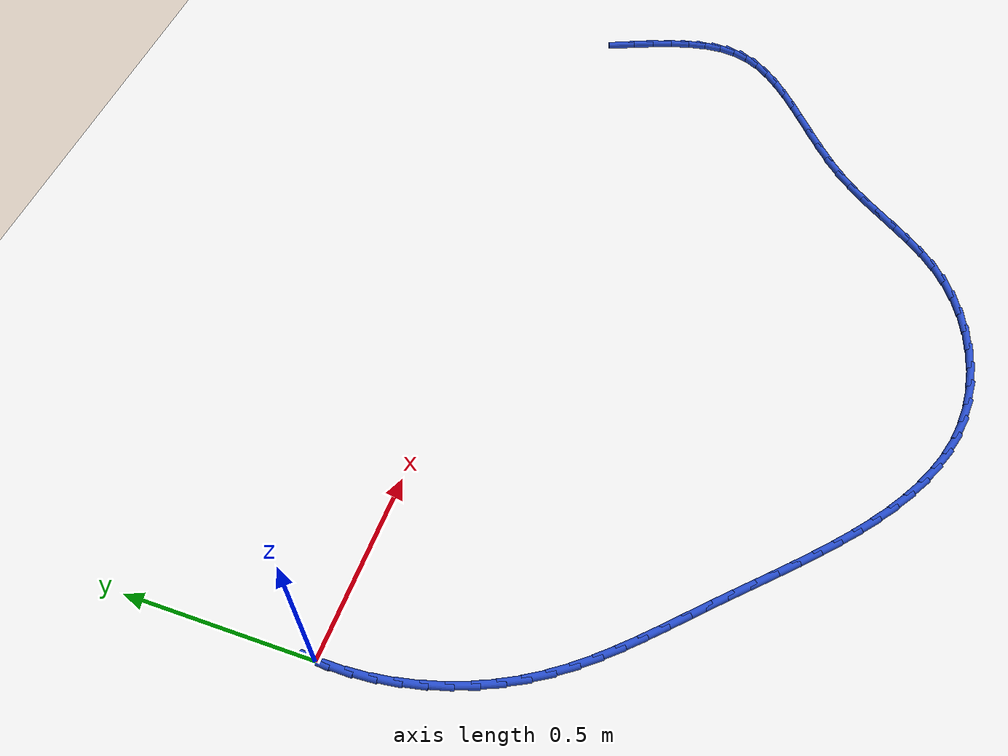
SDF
<sdf version="1.6">
 <world name="default">
  <model name="ground_plane">
   <static>1</static>
   <link name="link">
    <collision name="collision">
     <geometry><plane><normal>0 0 1</normal><size>100 100</size></plane></geometry>
     <surface><friction><ode><mu>100</mu><mu2>50</mu2></ode></friction></surface>
    </collision>
    <visual name="visual">
     <cast_shadows>0</cast_shadows>
     <geometry><plane><normal>0 0 1</normal><size>100 100</size></plane></geometry>
     <material>
      <script><uri>file://media/materials/scripts/gazebo.material</uri><name>Gazebo/WhiteGlow</name></script>
     </material>
    </visual>
   </link>
  </model>
  <model name="line">
   <link name="link_65">
    <pose>2.1895649396070658 -0.03903523564476519 0.01 0 1.57 -1.1783999816866964</pose>
    <collision name="collision">
     <geometry><cylinder><radius>0.01</radius><length>0.08</length></cylinder></geometry>
    </collision>
    <visual name="visual">
     <material>
      <script><name>Gazebo/Blue</name><uri>file://media/materials/scripts/gazebo.material</uri></script>
     </material>
     <geometry><cylinder><radius>0.01</radius><length>0.08</length></cylinder></geometry>
    </visual>
   </link>
   <link name="link_66">
    <pose>2.213152829165421 -0.09603023542315518 0.01 0 1.57 -1.1997097936757395</pose>
    <collision name="collision">
     <geometry><cylinder><radius>0.01</radius><length>0.08</length></cylinder></geometry>
    </collision>
    <visual name="visual">
     <material>
      <script><name>Gazebo/Blue</name><uri>file://media/materials/scripts/gazebo.material</uri></script>
     </material>
     <geometry><cylinder><radius>0.01</radius><length>0.08</length></cylinder></geometry>
    </visual>
   </link>
   <link name="link_67">
    <pose>2.2346405037199544 -0.15125233572940475 0.01 0 1.57 -1.2411557181424564</pose>
    <collision name="collision">
     <geometry><cylinder><radius>0.01</radius><length>0.08</length></cylinder></geometry>
    </collision>
    <visual name="visual">
     <material>
      <script><name>Gazebo/Blue</name><uri>file://media/materials/scripts/gazebo.material</uri></script>
     </material>
     <geometry><cylinder><radius>0.01</radius><length>0.08</length></cylinder></geometry>
    </visual>
   </link>
   <link name="link_68">
    <pose>2.252913759935136 -0.20466364380905144 0.01 0 1.57 -1.3066737340160457</pose>
    <collision name="collision">
     <geometry><cylinder><radius>0.01</radius><length>0.08</length></cylinder></geometry>
    </collision>
    <visual name="visual">
     <material>
      <script><name>Gazebo/Blue</name><uri>file://media/materials/scripts/gazebo.material</uri></script>
     </material>
     <geometry><cylinder><radius>0.01</radius><length>0.08</length></cylinder></geometry>
    </visual>
   </link>
   <link name="link_69">
    <pose>2.266858394475439 -0.2562262669076353 0.01 0 1.57 -1.4012934879325303</pose>
    <collision name="collision">
     <geometry><cylinder><radius>0.01</radius><length>0.08</length></cylinder></geometry>
    </collision>
    <visual name="visual">
     <material>
      <script><name>Gazebo/Blue</name><uri>file://media/materials/scripts/gazebo.material</uri></script>
     </material>
     <geometry><cylinder><radius>0.01</radius><length>0.08</length></cylinder></geometry>
    </visual>
   </link>
   <link name="link_70">
    <pose>2.275360204005336 -0.3059023122706961 0.01 0 1.57 -1.5300917637974591</pose>
    <collision name="collision">
     <geometry><cylinder><radius>0.01</radius><length>0.08</length></cylinder></geometry>
    </collision>
    <visual name="visual">
     <material>
      <script><name>Gazebo/Blue</name><uri>file://media/materials/scripts/gazebo.material</uri></script>
     </material>
     <geometry><cylinder><radius>0.01</radius><length>0.08</length></cylinder></geometry>
    </visual>
   </link>
   <link name="link_71">
    <pose>2.277304985189299 -0.3536538871437717 0.01 0 1.57 1.4463811442503114</pose>
    <collision name="collision">
     <geometry><cylinder><radius>0.01</radius><length>0.08</length></cylinder></geometry>
    </collision>
    <visual name="visual">
     <material>
      <script><name>Gazebo/Blue</name><uri>file://media/materials/scripts/gazebo.material</uri></script>
     </material>
     <geometry><cylinder><radius>0.01</radius><length>0.08</length></cylinder></geometry>
    </visual>
   </link>
   <link name="link_72">
    <pose>2.2715785346917983 -0.3994430987724018 0.01 0 1.57 1.2510643974522038</pose>
    <collision name="collision">
     <geometry><cylinder><radius>0.01</radius><length>0.08</length></cylinder></geometry>
    </collision>
    <visual name="visual">
     <material>
      <script><name>Gazebo/Blue</name><uri>file://media/materials/scripts/gazebo.material</uri></script>
     </material>
     <geometry><cylinder><radius>0.01</radius><length>0.08</length></cylinder></geometry>
    </visual>
   </link>
   <link name="link_73">
    <pose>2.257079593408134 -0.44323438551518096 0.01 0 1.57 1.0603291132609824</pose>
    <collision name="collision">
     <geometry><cylinder><radius>0.01</radius><length>0.08</length></cylinder></geometry>
    </collision>
    <visual name="visual">
     <material>
      <script><name>Gazebo/Blue</name><uri>file://media/materials/scripts/gazebo.material</uri></script>
     </material>
     <geometry><cylinder><radius>0.01</radius><length>0.08</length></cylinder></geometry>
    </visual>
   </link>
   <link name="link_74">
    <pose>2.233605739997131 -0.48515405648788623 0.01 0 1.57 0.9139209159196641</pose>
    <collision name="collision">
     <geometry><cylinder><radius>0.01</radius><length>0.08</length></cylinder></geometry>
    </collision>
    <visual name="visual">
     <material>
      <script><name>Gazebo/Blue</name><uri>file://media/materials/scripts/gazebo.material</uri></script>
     </material>
     <geometry><cylinder><radius>0.01</radius><length>0.08</length></cylinder></geometry>
    </visual>
   </link>
   <link name="link_75">
    <pose>2.2024229566133964 -0.5255928640633073 0.01 0 1.57 0.8098900711084929</pose>
    <collision name="collision">
     <geometry><cylinder><radius>0.01</radius><length>0.08</length></cylinder></geometry>
    </collision>
    <visual name="visual">
     <material>
      <script><name>Gazebo/Blue</name><uri>file://media/materials/scripts/gazebo.material</uri></script>
     </material>
     <geometry><cylinder><radius>0.01</radius><length>0.08</length></cylinder></geometry>
    </visual>
   </link>
   <link name="link_76">
    <pose>2.1649327576412984 -0.5649659684724063 0.01 0 1.57 0.7401430956129548</pose>
    <collision name="collision">
     <geometry><cylinder><radius>0.01</radius><length>0.08</length></cylinder></geometry>
    </collision>
    <visual name="visual">
     <material>
      <script><name>Gazebo/Blue</name><uri>file://media/materials/scripts/gazebo.material</uri></script>
     </material>
     <geometry><cylinder><radius>0.01</radius><length>0.08</length></cylinder></geometry>
    </visual>
   </link>
   <link name="link_77">
    <pose>2.1225366574652025 -0.6036885299461473 0.01 0 1.57 0.6977748632067975</pose>
    <collision name="collision">
     <geometry><cylinder><radius>0.01</radius><length>0.08</length></cylinder></geometry>
    </collision>
    <visual name="visual">
     <material>
      <script><name>Gazebo/Blue</name><uri>file://media/materials/scripts/gazebo.material</uri></script>
     </material>
     <geometry><cylinder><radius>0.01</radius><length>0.08</length></cylinder></geometry>
    </visual>
   </link>
   <link name="link_78">
    <pose>2.076636170469475 -0.642175708715494 0.01 0 1.57 0.6780887767837892</pose>
    <collision name="collision">
     <geometry><cylinder><radius>0.01</radius><length>0.08</length></cylinder></geometry>
    </collision>
    <visual name="visual">
     <material>
      <script><name>Gazebo/Blue</name><uri>file://media/materials/scripts/gazebo.material</uri></script>
     </material>
     <geometry><cylinder><radius>0.01</radius><length>0.08</length></cylinder></geometry>
    </visual>
   </link>
   <link name="link_79">
    <pose>2.0286328110384826 -0.6808426650114083 0.01 0 1.57 0.6784621123797258</pose>
    <collision name="collision">
     <geometry><cylinder><radius>0.01</radius><length>0.08</length></cylinder></geometry>
    </collision>
    <visual name="visual">
     <material>
      <script><name>Gazebo/Blue</name><uri>file://media/materials/scripts/gazebo.material</uri></script>
     </material>
     <geometry><cylinder><radius>0.01</radius><length>0.08</length></cylinder></geometry>
    </visual>
   </link>
   <link name="link_80">
    <pose>1.9799280935565928 -0.7201045590648546 0.01 0 1.57 0.6980263480804113</pose>
    <collision name="collision">
     <geometry><cylinder><radius>0.01</radius><length>0.08</length></cylinder></geometry>
    </collision>
    <visual name="visual">
     <material>
      <script><name>Gazebo/Blue</name><uri>file://media/materials/scripts/gazebo.material</uri></script>
     </material>
     <geometry><cylinder><radius>0.01</radius><length>0.08</length></cylinder></geometry>
    </visual>
   </link>
   <link name="link_81">
    <pose>1.9319235324081707 -0.7603765511067958 0.01 0 1.57 0.7374254845285777</pose>
    <collision name="collision">
     <geometry><cylinder><radius>0.01</radius><length>0.08</length></cylinder></geometry>
    </collision>
    <visual name="visual">
     <material>
      <script><name>Gazebo/Blue</name><uri>file://media/materials/scripts/gazebo.material</uri></script>
     </material>
     <geometry><cylinder><radius>0.01</radius><length>0.08</length></cylinder></geometry>
    </visual>
   </link>
   <link name="link_82">
    <pose>1.8860206419775842 -0.8020738013681951 0.01 0 1.57 0.7984361288930448</pose>
    <collision name="collision">
     <geometry><cylinder><radius>0.01</radius><length>0.08</length></cylinder></geometry>
    </collision>
    <visual name="visual">
     <material>
      <script><name>Gazebo/Blue</name><uri>file://media/materials/scripts/gazebo.material</uri></script>
     </material>
     <geometry><cylinder><radius>0.01</radius><length>0.08</length></cylinder></geometry>
    </visual>
   </link>
   <link name="link_83">
    <pose>1.843609152811268 -0.8456058833463613 0.01 0 1.57 0.8674309957947692</pose>
    <collision name="collision">
     <geometry><cylinder><radius>0.01</radius><length>0.08</length></cylinder></geometry>
    </collision>
    <visual name="visual">
     <material>
      <script><name>Gazebo/Blue</name><uri>file://media/materials/scripts/gazebo.material</uri></script>
     </material>
     <geometry><cylinder><radius>0.01</radius><length>0.08</length></cylinder></geometry>
    </visual>
   </link>
   <link name="link_84">
    <pose>1.805158195370443 -0.8909459127809746 0.01 0 1.57 0.9163106787712916</pose>
    <collision name="collision">
     <geometry><cylinder><radius>0.01</radius><length>0.08</length></cylinder></geometry>
    </collision>
    <visual name="visual">
     <material>
      <script><name>Gazebo/Blue</name><uri>file://media/materials/scripts/gazebo.material</uri></script>
     </material>
     <geometry><cylinder><radius>0.01</radius><length>0.08</length></cylinder></geometry>
    </visual>
   </link>
   <link name="link_85">
    <pose>1.769571376937207 -0.9373247887345254 0.01 0 1.57 0.9406310151177881</pose>
    <collision name="collision">
     <geometry><cylinder><radius>0.01</radius><length>0.08</length></cylinder></geometry>
    </collision>
    <visual name="visual">
     <material>
      <script><name>Gazebo/Blue</name><uri>file://media/materials/scripts/gazebo.material</uri></script>
     </material>
     <geometry><cylinder><radius>0.01</radius><length>0.08</length></cylinder></geometry>
    </visual>
   </link>
   <link name="link_86">
    <pose>1.73560002489034 -0.9839012141593796 0.01 0 1.57 0.9391725968879134</pose>
    <collision name="collision">
     <geometry><cylinder><radius>0.01</radius><length>0.08</length></cylinder></geometry>
    </collision>
    <visual name="visual">
     <material>
      <script><name>Gazebo/Blue</name><uri>file://media/materials/scripts/gazebo.material</uri></script>
     </material>
     <geometry><cylinder><radius>0.01</radius><length>0.08</length></cylinder></geometry>
    </visual>
   </link>
   <link name="link_87">
    <pose>1.7019954666086259 -1.0298338920079013 0.01 0 1.57 0.910930984916861</pose>
    <collision name="collision">
     <geometry><cylinder><radius>0.01</radius><length>0.08</length></cylinder></geometry>
    </collision>
    <visual name="visual">
     <material>
      <script><name>Gazebo/Blue</name><uri>file://media/materials/scripts/gazebo.material</uri></script>
     </material>
     <geometry><cylinder><radius>0.01</radius><length>0.08</length></cylinder></geometry>
    </visual>
   </link>
   <link name="link_88">
    <pose>1.6675090294708448 -1.0742815252324576 0.01 0 1.57 0.8551909352550403</pose>
    <collision name="collision">
     <geometry><cylinder><radius>0.01</radius><length>0.08</length></cylinder></geometry>
    </collision>
    <visual name="visual">
     <material>
      <script><name>Gazebo/Blue</name><uri>file://media/materials/scripts/gazebo.material</uri></script>
     </material>
     <geometry><cylinder><radius>0.01</radius><length>0.08</length></cylinder></geometry>
    </visual>
   </link>
   <link name="link_89">
    <pose>1.630892040855779 -1.1164028167854125 0.01 0 1.57 0.772193590114462</pose>
    <collision name="collision">
     <geometry><cylinder><radius>0.01</radius><length>0.08</length></cylinder></geometry>
    </collision>
    <visual name="visual">
     <material>
      <script><name>Gazebo/Blue</name><uri>file://media/materials/scripts/gazebo.material</uri></script>
     </material>
     <geometry><cylinder><radius>0.01</radius><length>0.08</length></cylinder></geometry>
    </visual>
   </link>
   <link name="link_90">
    <pose>1.5908958281422105 -1.1553564696191327 0.01 0 1.57 0.6659135869912923</pose>
    <collision name="collision">
     <geometry><cylinder><radius>0.01</radius><length>0.08</length></cylinder></geometry>
    </collision>
    <visual name="visual">
     <material>
      <script><name>Gazebo/Blue</name><uri>file://media/materials/scripts/gazebo.material</uri></script>
     </material>
     <geometry><cylinder><radius>0.01</radius><length>0.08</length></cylinder></geometry>
    </visual>
   </link>
   <link name="link_91">
    <pose>1.5463752218054947 -1.1903329390807547 0.01 0 1.57 0.5577831855368323</pose>
    <collision name="collision">
     <geometry><cylinder><radius>0.01</radius><length>0.08</length></cylinder></geometry>
    </collision>
    <visual name="visual">
     <material>
      <script><name>Gazebo/Blue</name><uri>file://media/materials/scripts/gazebo.material</uri></script>
     </material>
     <geometry><cylinder><radius>0.01</radius><length>0.08</length></cylinder></geometry>
    </visual>
   </link>
   <link name="link_92">
    <pose>1.4973908651773653 -1.2208925964629453 0.01 0 1.57 0.45812924908951147</pose>
    <collision name="collision">
     <geometry><cylinder><radius>0.01</radius><length>0.08</length></cylinder></geometry>
    </collision>
    <visual name="visual">
     <material>
      <script><name>Gazebo/Blue</name><uri>file://media/materials/scripts/gazebo.material</uri></script>
     </material>
     <geometry><cylinder><radius>0.01</radius><length>0.08</length></cylinder></geometry>
    </visual>
   </link>
   <link name="link_93">
    <pose>1.4447825766633102 -1.246834846240531 0.01 0 1.57 0.36447319033714765</pose>
    <collision name="collision">
     <geometry><cylinder><radius>0.01</radius><length>0.08</length></cylinder></geometry>
    </collision>
    <visual name="visual">
     <material>
      <script><name>Gazebo/Blue</name><uri>file://media/materials/scripts/gazebo.material</uri></script>
     </material>
     <geometry><cylinder><radius>0.01</radius><length>0.08</length></cylinder></geometry>
    </visual>
   </link>
   <link name="link_94">
    <pose>1.3894032163513457 -1.2679630937797672 0.01 0 1.57 0.2742112568292758</pose>
    <collision name="collision">
     <geometry><cylinder><radius>0.01</radius><length>0.08</length></cylinder></geometry>
    </collision>
    <visual name="visual">
     <material>
      <script><name>Gazebo/Blue</name><uri>file://media/materials/scripts/gazebo.material</uri></script>
     </material>
     <geometry><cylinder><radius>0.01</radius><length>0.08</length></cylinder></geometry>
    </visual>
   </link>
   <link name="link_95">
    <pose>1.3321056443294903 -1.284080744446909 0.01 0 1.57 0.1848084738284853</pose>
    <collision name="collision">
     <geometry><cylinder><radius>0.01</radius><length>0.08</length></cylinder></geometry>
    </collision>
    <visual name="visual">
     <material>
      <script><name>Gazebo/Blue</name><uri>file://media/materials/scripts/gazebo.material</uri></script>
     </material>
     <geometry><cylinder><radius>0.01</radius><length>0.08</length></cylinder></geometry>
    </visual>
   </link>
   <link name="link_96">
    <pose>1.2737427206857617 -1.2949912036082125 0.01 0 1.57 0.0937344799099432</pose>
    <collision name="collision">
     <geometry><cylinder><radius>0.01</radius><length>0.08</length></cylinder></geometry>
    </collision>
    <visual name="visual">
     <material>
      <script><name>Gazebo/Blue</name><uri>file://media/materials/scripts/gazebo.material</uri></script>
     </material>
     <geometry><cylinder><radius>0.01</radius><length>0.08</length></cylinder></geometry>
    </visual>
   </link>
   <link name="link_97">
    <pose>1.2151673055081775 -1.3004978766299333 0.01 0 1.57 -0.001617460852261417</pose>
    <collision name="collision">
     <geometry><cylinder><radius>0.01</radius><length>0.08</length></cylinder></geometry>
    </collision>
    <visual name="visual">
     <material>
      <script><name>Gazebo/Blue</name><uri>file://media/materials/scripts/gazebo.material</uri></script>
     </material>
     <geometry><cylinder><radius>0.01</radius><length>0.08</length></cylinder></geometry>
    </visual>
   </link>
   <link name="link_98">
    <pose>1.1572322588847554 -1.3004041688783272 0.01 0 1.57 -0.10361346539883963</pose>
    <collision name="collision">
     <geometry><cylinder><radius>0.01</radius><length>0.08</length></cylinder></geometry>
    </collision>
    <visual name="visual">
     <material>
      <script><name>Gazebo/Blue</name><uri>file://media/materials/scripts/gazebo.material</uri></script>
     </material>
     <geometry><cylinder><radius>0.01</radius><length>0.08</length></cylinder></geometry>
    </visual>
   </link>
   <link name="link_99">
    <pose>1.1007628762047275 -1.2945321518922739 0.01 0 1.57 -0.2071143768916317</pose>
    <collision name="collision">
     <geometry><cylinder><radius>0.01</radius><length>0.08</length></cylinder></geometry>
    </collision>
    <visual name="visual">
     <material>
      <script><name>Gazebo/Blue</name><uri>file://media/materials/scripts/gazebo.material</uri></script>
     </material>
     <geometry><cylinder><radius>0.01</radius><length>0.08</length></cylinder></geometry>
    </visual>
   </link>
   <link name="link_100">
    <pose>1.0460842028227373 -1.2830426548939537 0.01 0 1.57 -0.3044162251517337</pose>
    <collision name="collision">
     <geometry><cylinder><radius>0.01</radius><length>0.08</length></cylinder></geometry>
    </collision>
    <visual name="visual">
     <material>
      <script><name>Gazebo/Blue</name><uri>file://media/materials/scripts/gazebo.material</uri></script>
     </material>
     <geometry><cylinder><radius>0.01</radius><length>0.08</length></cylinder></geometry>
    </visual>
   </link>
   <link name="link_101">
    <pose>0.9930856796626555 -1.2663914882901524 0.01 0 1.57 -0.39333897195352846</pose>
    <collision name="collision">
     <geometry><cylinder><radius>0.01</radius><length>0.08</length></cylinder></geometry>
    </collision>
    <visual name="visual">
     <material>
      <script><name>Gazebo/Blue</name><uri>file://media/materials/scripts/gazebo.material</uri></script>
     </material>
     <geometry><cylinder><radius>0.01</radius><length>0.08</length></cylinder></geometry>
    </visual>
   </link>
   <link name="link_102">
    <pose>0.9416421897235524 -1.2450443207755864 0.01 0 1.57 -0.47273480719895866</pose>
    <collision name="collision">
     <geometry><cylinder><radius>0.01</radius><length>0.08</length></cylinder></geometry>
    </collision>
    <visual name="visual">
     <material>
      <script><name>Gazebo/Blue</name><uri>file://media/materials/scripts/gazebo.material</uri></script>
     </material>
     <geometry><cylinder><radius>0.01</radius><length>0.08</length></cylinder></geometry>
    </visual>
   </link>
   <link name="link_103">
    <pose>0.8916286160045017 -1.2194668210449742 0.01 0 1.57 -0.5421823000290429</pose>
    <collision name="collision">
     <geometry><cylinder><radius>0.01</radius><length>0.08</length></cylinder></geometry>
    </collision>
    <visual name="visual">
     <material>
      <script><name>Gazebo/Blue</name><uri>file://media/materials/scripts/gazebo.material</uri></script>
     </material>
     <geometry><cylinder><radius>0.01</radius><length>0.08</length></cylinder></geometry>
    </visual>
   </link>
   <link name="link_104">
    <pose>0.8429198415045734 -1.190124657793032 0.01 0 1.57 -0.6017858037862857</pose>
    <collision name="collision">
     <geometry><cylinder><radius>0.01</radius><length>0.08</length></cylinder></geometry>
    </collision>
    <visual name="visual">
     <material>
      <script><name>Gazebo/Blue</name><uri>file://media/materials/scripts/gazebo.material</uri></script>
     </material>
     <geometry><cylinder><radius>0.01</radius><length>0.08</length></cylinder></geometry>
    </visual>
   </link>
   <link name="link_105">
    <pose>0.7953907492228399 -1.157483499714478 0.01 0 1.57 -0.6519654059508453</pose>
    <collision name="collision">
     <geometry><cylinder><radius>0.01</radius><length>0.08</length></cylinder></geometry>
    </collision>
    <visual name="visual">
     <material>
      <script><name>Gazebo/Blue</name><uri>file://media/materials/scripts/gazebo.material</uri></script>
     </material>
     <geometry><cylinder><radius>0.01</radius><length>0.08</length></cylinder></geometry>
    </visual>
   </link>
   <link name="link_106">
    <pose>0.7489162221583721 -1.1220090155040292 0.01 0 1.57 -0.6932840680949194</pose>
    <collision name="collision">
     <geometry><cylinder><radius>0.01</radius><length>0.08</length></cylinder></geometry>
    </collision>
    <visual name="visual">
     <material>
      <script><name>Gazebo/Blue</name><uri>file://media/materials/scripts/gazebo.material</uri></script>
     </material>
     <geometry><cylinder><radius>0.01</radius><length>0.08</length></cylinder></geometry>
    </visual>
   </link>
   <link name="link_107">
    <pose>0.7033711433102411 -1.0841668738564016 0.01 0 1.57 -0.7263248257421603</pose>
    <collision name="collision">
     <geometry><cylinder><radius>0.01</radius><length>0.08</length></cylinder></geometry>
    </collision>
    <visual name="visual">
     <material>
      <script><name>Gazebo/Blue</name><uri>file://media/materials/scripts/gazebo.material</uri></script>
     </material>
     <geometry><cylinder><radius>0.01</radius><length>0.08</length></cylinder></geometry>
    </visual>
   </link>
   <link name="link_108">
    <pose>0.6586303956775197 -1.0444227434663145 0.01 0 1.57 -0.7516121518591032</pose>
    <collision name="collision">
     <geometry><cylinder><radius>0.01</radius><length>0.08</length></cylinder></geometry>
    </collision>
    <visual name="visual">
     <material>
      <script><name>Gazebo/Blue</name><uri>file://media/materials/scripts/gazebo.material</uri></script>
     </material>
     <geometry><cylinder><radius>0.01</radius><length>0.08</length></cylinder></geometry>
    </visual>
   </link>
   <link name="link_109">
    <pose>0.6145688622592786 -1.003242293028484 0.01 0 1.57 -0.7695652866244235</pose>
    <collision name="collision">
     <geometry><cylinder><radius>0.01</radius><length>0.08</length></cylinder></geometry>
    </collision>
    <visual name="visual">
     <material>
      <script><name>Gazebo/Blue</name><uri>file://media/materials/scripts/gazebo.material</uri></script>
     </material>
     <geometry><cylinder><radius>0.01</radius><length>0.08</length></cylinder></geometry>
    </visual>
   </link>
   <link name="link_110">
    <pose>0.5710614260545892 -0.9610911912376272 0.01 0 1.57 -0.7804716994107191</pose>
    <collision name="collision">
     <geometry><cylinder><radius>0.01</radius><length>0.08</length></cylinder></geometry>
    </collision>
    <visual name="visual">
     <material>
      <script><name>Gazebo/Blue</name><uri>file://media/materials/scripts/gazebo.material</uri></script>
     </material>
     <geometry><cylinder><radius>0.01</radius><length>0.08</length></cylinder></geometry>
    </visual>
   </link>
   <link name="link_111">
    <pose>0.5279829700625237 -0.9184351067884622 0.01 0 1.57 -0.784471588539481</pose>
    <collision name="collision">
     <geometry><cylinder><radius>0.01</radius><length>0.08</length></cylinder></geometry>
    </collision>
    <visual name="visual">
     <material>
      <script><name>Gazebo/Blue</name><uri>file://media/materials/scripts/gazebo.material</uri></script>
     </material>
     <geometry><cylinder><radius>0.01</radius><length>0.08</length></cylinder></geometry>
    </visual>
   </link>
   <link name="link_112">
    <pose>0.48520837728215366 -0.8757397083757062 0.01 0 1.57 -0.7815473215284534</pose>
    <collision name="collision">
     <geometry><cylinder><radius>0.01</radius><length>0.08</length></cylinder></geometry>
    </collision>
    <visual name="visual">
     <material>
      <script><name>Gazebo/Blue</name><uri>file://media/materials/scripts/gazebo.material</uri></script>
     </material>
     <geometry><cylinder><radius>0.01</radius><length>0.08</length></cylinder></geometry>
    </visual>
   </link>
   <link name="link_113">
    <pose>0.4426125307125499 -0.833470664694076 0.01 0 1.57 -0.7727175145802414</pose>
    <collision name="collision">
     <geometry><cylinder><radius>0.01</radius><length>0.08</length></cylinder></geometry>
    </collision>
    <visual name="visual">
     <material>
      <script><name>Gazebo/Blue</name><uri>file://media/materials/scripts/gazebo.material</uri></script>
     </material>
     <geometry><cylinder><radius>0.01</radius><length>0.08</length></cylinder></geometry>
    </visual>
   </link>
   <link name="link_114">
    <pose>0.4001063149867934 -0.7920290193743716 0.01 0 1.57 -0.7683595630123876</pose>
    <collision name="collision">
     <geometry><cylinder><radius>0.01</radius><length>0.08</length></cylinder></geometry>
    </collision>
    <visual name="visual">
     <material>
      <script><name>Gazebo/Blue</name><uri>file://media/materials/scripts/gazebo.material</uri></script>
     </material>
     <geometry><cylinder><radius>0.01</radius><length>0.08</length></cylinder></geometry>
    </visual>
   </link>
   <link name="link_115">
    <pose>0.35791498627926815 -0.7512515005236674 0.01 0 1.57 -0.7741762397703472</pose>
    <collision name="collision">
     <geometry><cylinder><radius>0.01</radius><length>0.08</length></cylinder></geometry>
    </collision>
    <visual name="visual">
     <material>
      <script><name>Gazebo/Blue</name><uri>file://media/materials/scripts/gazebo.material</uri></script>
     </material>
     <geometry><cylinder><radius>0.01</radius><length>0.08</length></cylinder></geometry>
    </visual>
   </link>
   <link name="link_116">
    <pose>0.3164261037418879 -0.7106834927979584 0.01 0 1.57 -0.7905453231487809</pose>
    <collision name="collision">
     <geometry><cylinder><radius>0.01</radius><length>0.08</length></cylinder></geometry>
    </collision>
    <visual name="visual">
     <material>
      <script><name>Gazebo/Blue</name><uri>file://media/materials/scripts/gazebo.material</uri></script>
     </material>
     <geometry><cylinder><radius>0.01</radius><length>0.08</length></cylinder></geometry>
    </visual>
   </link>
   <link name="link_117">
    <pose>0.2760285809117143 -0.6698679496517295 0.01 0 1.57 -0.8177459073430526</pose>
    <collision name="collision">
     <geometry><cylinder><radius>0.01</radius><length>0.08</length></cylinder></geometry>
    </collision>
    <visual name="visual">
     <material>
      <script><name>Gazebo/Blue</name><uri>file://media/materials/scripts/gazebo.material</uri></script>
     </material>
     <geometry><cylinder><radius>0.01</radius><length>0.08</length></cylinder></geometry>
    </visual>
   </link>
   <link name="link_118">
    <pose>0.23711133132580903 -0.6283478245394661 0.01 0 1.57 -0.8559406917524355</pose>
    <collision name="collision">
     <geometry><cylinder><radius>0.01</radius><length>0.08</length></cylinder></geometry>
    </collision>
    <visual name="visual">
     <material>
      <script><name>Gazebo/Blue</name><uri>file://media/materials/scripts/gazebo.material</uri></script>
     </material>
     <geometry><cylinder><radius>0.01</radius><length>0.08</length></cylinder></geometry>
    </visual>
   </link>
   <link name="link_119">
    <pose>0.20006326852123563 -0.5856660709156556 0.01 0 1.57 -0.9050716220280661</pose>
    <collision name="collision">
     <geometry><cylinder><radius>0.01</radius><length>0.08</length></cylinder></geometry>
    </collision>
    <visual name="visual">
     <material>
      <script><name>Gazebo/Blue</name><uri>file://media/materials/scripts/gazebo.material</uri></script>
     </material>
     <geometry><cylinder><radius>0.01</radius><length>0.08</length></cylinder></geometry>
    </visual>
   </link>
   <link name="link_120">
    <pose>0.16527330603505577 -0.541365642234783 0.01 0 1.57 -0.9647215218909325</pose>
    <collision name="collision">
     <geometry><cylinder><radius>0.01</radius><length>0.08</length></cylinder></geometry>
    </collision>
    <visual name="visual">
     <material>
      <script><name>Gazebo/Blue</name><uri>file://media/materials/scripts/gazebo.material</uri></script>
     </material>
     <geometry><cylinder><radius>0.01</radius><length>0.08</length></cylinder></geometry>
    </visual>
   </link>
   <link name="link_121">
    <pose>0.13313035740433185 -0.4949894919513343 0.01 0 1.57 -1.0338576166760793</pose>
    <collision name="collision">
     <geometry><cylinder><radius>0.01</radius><length>0.08</length></cylinder></geometry>
    </collision>
    <visual name="visual">
     <material>
      <script><name>Gazebo/Blue</name><uri>file://media/materials/scripts/gazebo.material</uri></script>
     </material>
     <geometry><cylinder><radius>0.01</radius><length>0.08</length></cylinder></geometry>
    </visual>
   </link>
   <link name="link_122">
    <pose>0.10402090973051578 -0.4460887315860998 0.01 0 1.57 -1.1064046921462791</pose>
    <collision name="collision">
     <geometry><cylinder><radius>0.01</radius><length>0.08</length></cylinder></geometry>
    </collision>
    <visual name="visual">
     <material>
      <script><name>Gazebo/Blue</name><uri>file://media/materials/scripts/gazebo.material</uri></script>
     </material>
     <geometry><cylinder><radius>0.01</radius><length>0.08</length></cylinder></geometry>
    </visual>
   </link>
   <link name="link_123">
    <pose>0.07822120065208314 -0.3945851490648789 0.01 0 1.57 -1.1759326309039486</pose>
    <collision name="collision">
     <geometry><cylinder><radius>0.01</radius><length>0.08</length></cylinder></geometry>
    </collision>
    <visual name="visual">
     <material>
      <script><name>Gazebo/Blue</name><uri>file://media/materials/scripts/gazebo.material</uri></script>
     </material>
     <geometry><cylinder><radius>0.01</radius><length>0.08</length></cylinder></geometry>
    </visual>
   </link>
   <link name="link_124">
    <pose>0.055854290967939806 -0.3409155374544512 0.01 0 1.57 -1.2430632065813108</pose>
    <collision name="collision">
     <geometry><cylinder><radius>0.01</radius><length>0.08</length></cylinder></geometry>
    </collision>
    <visual name="visual">
     <material>
      <script><name>Gazebo/Blue</name><uri>file://media/materials/scripts/gazebo.material</uri></script>
     </material>
     <geometry><cylinder><radius>0.01</radius><length>0.08</length></cylinder></geometry>
    </visual>
   </link>
   <link name="link_125">
    <pose>0.037031937461243454 -0.28555469573841363 0.01 0 1.57 -1.3088945993403873</pose>
    <collision name="collision">
     <geometry><cylinder><radius>0.01</radius><length>0.08</length></cylinder></geometry>
    </collision>
    <visual name="visual">
     <material>
      <script><name>Gazebo/Blue</name><uri>file://media/materials/scripts/gazebo.material</uri></script>
     </material>
     <geometry><cylinder><radius>0.01</radius><length>0.08</length></cylinder></geometry>
    </visual>
   </link>
   <link name="link_126">
    <pose>0.021865896915152012 -0.22897742290036316 0.01 0 1.57 -1.374504992171658</pose>
    <collision name="collision">
     <geometry><cylinder><radius>0.01</radius><length>0.08</length></cylinder></geometry>
    </collision>
    <visual name="visual">
     <material>
      <script><name>Gazebo/Blue</name><uri>file://media/materials/scripts/gazebo.material</uri></script>
     </material>
     <geometry><cylinder><radius>0.01</radius><length>0.08</length></cylinder></geometry>
    </visual>
   </link>
   <link name="link_127">
    <pose>0.010467926112823992 -0.1716585179238993 0.01 0 1.57 -1.4409749323258765</pose>
    <collision name="collision">
     <geometry><cylinder><radius>0.01</radius><length>0.08</length></cylinder></geometry>
    </collision>
    <visual name="visual">
     <material>
      <script><name>Gazebo/Blue</name><uri>file://media/materials/scripts/gazebo.material</uri></script>
     </material>
     <geometry><cylinder><radius>0.01</radius><length>0.08</length></cylinder></geometry>
    </visual>
   </link>
   <link name="link_128">
    <pose>0.0029497818374172695 -0.11407277979261898 0.01 0 1.57 -1.5094113998125704</pose>
    <collision name="collision">
     <geometry><cylinder><radius>0.01</radius><length>0.08</length></cylinder></geometry>
    </collision>
    <visual name="visual">
     <material>
      <script><name>Gazebo/Blue</name><uri>file://media/materials/scripts/gazebo.material</uri></script>
     </material>
     <geometry><cylinder><radius>0.01</radius><length>0.08</length></cylinder></geometry>
    </visual>
   </link>
   <link name="link_129">
    <pose>-0.0005767791279100778 -0.05669500749011998 0.01 0 1.57 1.5606233105753249</pose>
    <collision name="collision">
     <geometry><cylinder><radius>0.01</radius><length>0.08</length></cylinder></geometry>
    </collision>
    <visual name="visual">
     <material>
      <script><name>Gazebo/Blue</name><uri>file://media/materials/scripts/gazebo.material</uri></script>
     </material>
     <geometry><cylinder><radius>0.01</radius><length>0.08</length></cylinder></geometry>
    </visual>
   </link>
   <link name="link_130">
    <pose>4.5102810375396984e-17 -6.938893903907228e-17 0.01 0 1.57 1.4847275887539617</pose>
    <collision name="collision">
     <geometry><cylinder><radius>0.01</radius><length>0.08</length></cylinder></geometry>
    </collision>
    <visual name="visual">
     <material>
      <script><name>Gazebo/Blue</name><uri>file://media/materials/scripts/gazebo.material</uri></script>
     </material>
     <geometry><cylinder><radius>0.01</radius><length>0.08</length></cylinder></geometry>
    </visual>
   </link>
  </model>
 </world>
</sdf>
